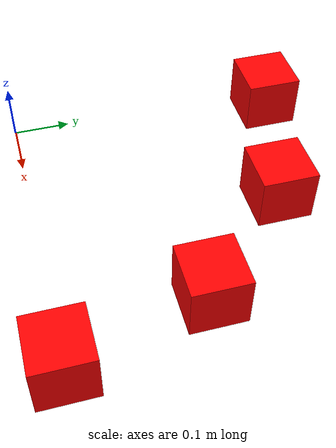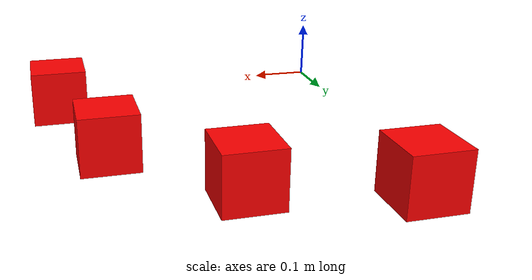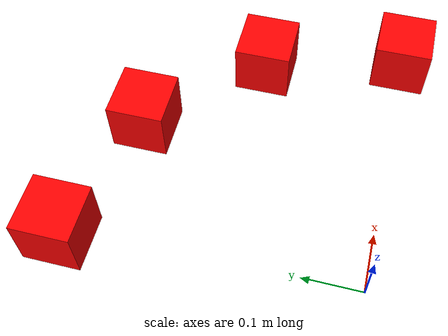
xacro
<robot name="test_robot" xmlns:xacro="http://ros.org/wiki/xacro">
	<xacro:include filename="$(find vis_lecture)/xacro/basic5_h.xacro"/>

	<link name="base_link"/>
	<xacro:box_macro suffix="box0" parent="base_link" radius="0"/>
	<xacro:box_macro suffix="box1" parent="base_link" radius="30"/>
	<xacro:box_macro suffix="box2" parent="base_link" radius="60"/>
	<xacro:box_macro suffix="box3" parent="base_link" radius="90"/>
</robot>

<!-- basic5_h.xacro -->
<robot name="test_robot" xmlns:xacro="http://ros.org/wiki/xacro">
	<material name="red">
		<color rgba="1.0 0.0 0.0 2.0"/>
	</material>

	<xacro:macro name="box_macro" params="suffix parent radius" >
		<joint name="${suffix}_joint" type="fixed">
			<origin rpy="0 0 0" xyz="${0.5*cos(radians(radius))} ${0.5*sin(radians(radius))} 0"/>
			<parent link="${parent}"/>
			<child link="${suffix}_link"/>
		</joint>

		<link name="${suffix}_link">
			<visual>
				<geometry>
					<box size="0.1 0.1 0.1" />
				</geometry>
				<material name="red"/>
			</visual>
		</link>
	</xacro:macro>
</robot>
